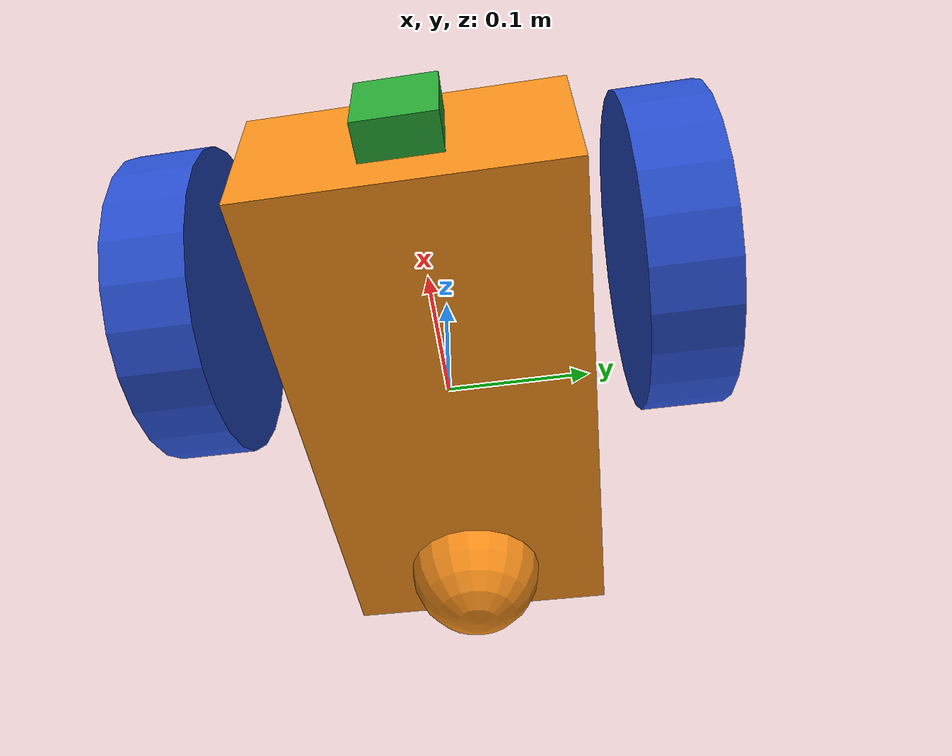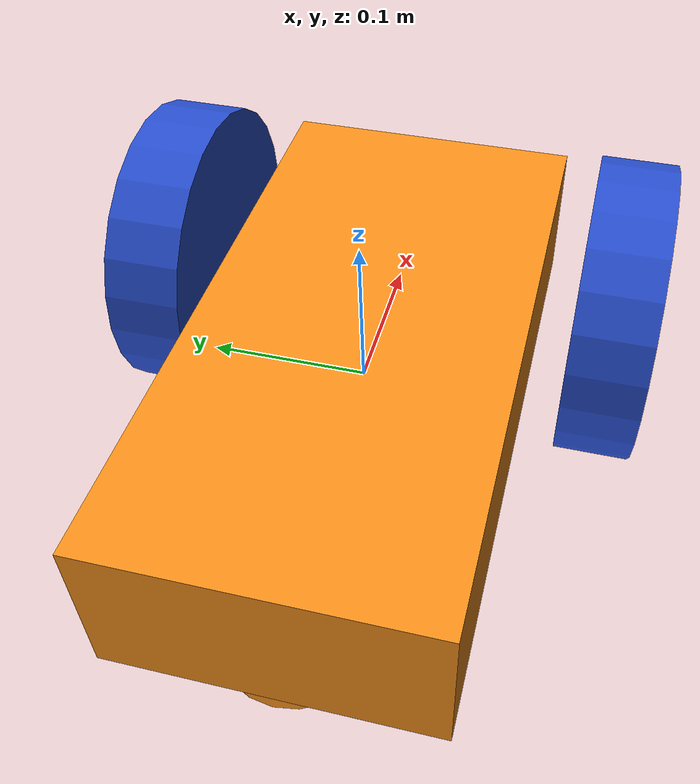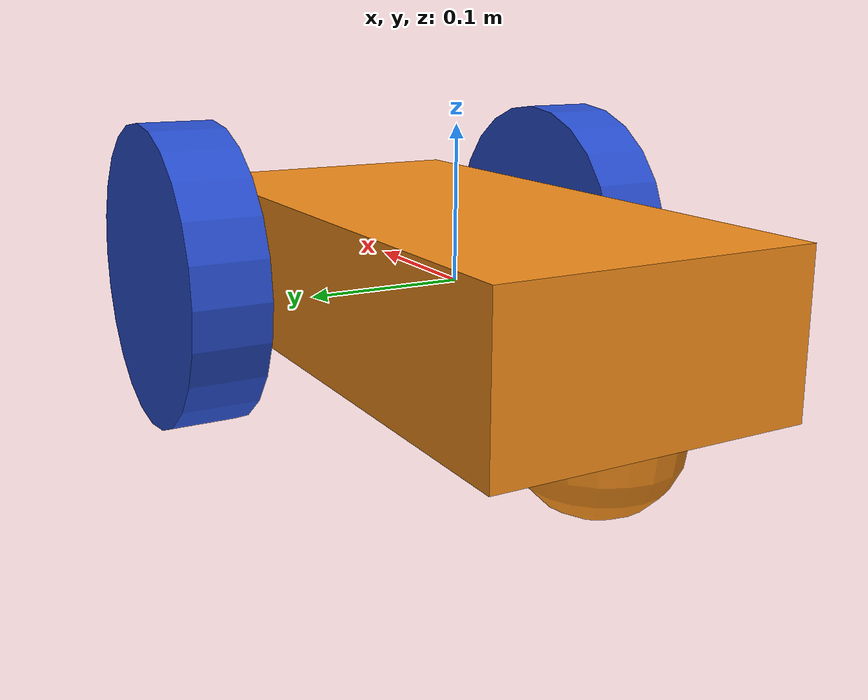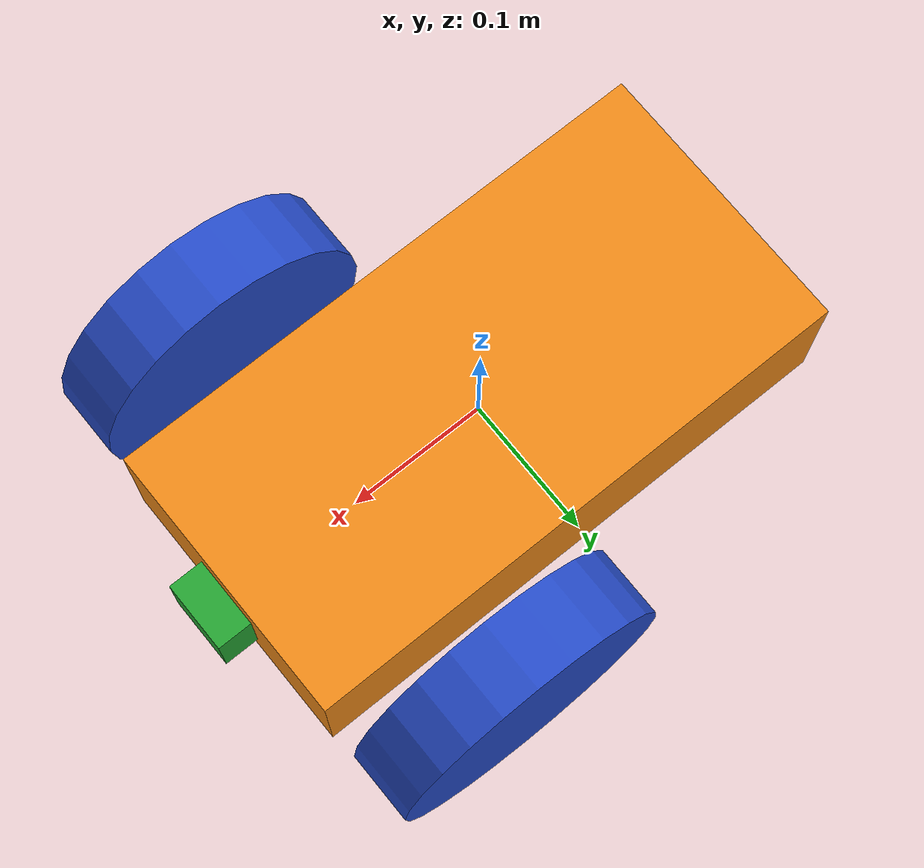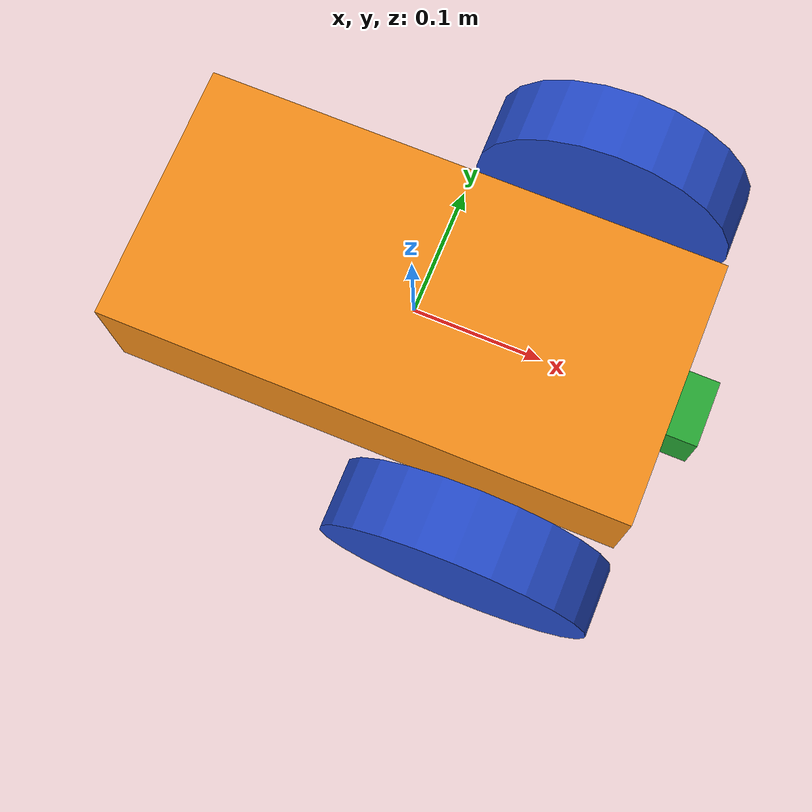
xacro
<?xml version='1.0'?>

<robot name="myrobot" xmlns:xacro="http://www.ros.org/wiki/xacro">

  <xacro:property name="cameraSize" value="0.05"/>
  <xacro:property name="cameraMass" value="0.1"/>

  <xacro:include filename="$(find mybot_description)/urdf/mybot.gazebo" />
  <xacro:include filename="$(find mybot_description)/urdf/materials.xacro" />
  <xacro:include filename="$(find mybot_description)/urdf/macros.xacro" />

  <link name='chassis'>
    <pose>0 0 0.1 0 0 0</pose>

    <inertial>
      <mass value="10.0"/>
      <origin xyz="0.0 0 0.1" rpy=" 0 0 0"/>
      <inertia
          ixx="0.5" ixy="0" ixz="0"
          iyy="1.0" iyz="0"
          izz="0.1"
      />
    </inertial>

    <collision name='collision'>
      <geometry>
        <box size=".4 .2 .1"/>
      </geometry>
    </collision>

    <visual name='chassis_visual'>
      <origin xyz="0 0 0" rpy=" 0 0 0"/>
      <geometry>
        <box size=".4 .2 .1"/>
      </geometry>
    </visual>

    <collision name='caster_collision'>
      <origin xyz="-0.15 0 -0.05" rpy=" 0 0 0"/>
      <geometry>
        <sphere radius="0.05"/>
      </geometry>
      <surface>
        <friction>
          <ode>
            <mu>0</mu>
            <mu2>0</mu2>
            <slip1>1.0</slip1>
            <slip2>1.0</slip2>
          </ode>
        </friction>
      </surface>
    </collision>

    <visual name='caster_visual'>
      <origin xyz="-0.15 0 -0.05" rpy=" 0 0 0"/>
      <geometry>
        <sphere radius="0.05"/>
      </geometry>
    </visual>
  </link>

  <link name="left_wheel">
    <!--origin xyz="0.1 0.13 0.1" rpy="0 1.5707 1.5707"/-->
    <collision name="collision">
      <origin xyz="0 0 0" rpy="0 1.5707 1.5707"/>
      <geometry>
        <cylinder radius="0.1" length="0.05"/>
      </geometry>
    </collision>
    <visual name="left_wheel_visual">
      <origin xyz="0 0 0" rpy="0 1.5707 1.5707"/>
      <geometry>
        <cylinder radius="0.1" length="0.05"/>
      </geometry>
    </visual>
    <inertial>
      <origin xyz="0 0 0" rpy="0 1.5707 1.5707"/>
      <mass value="5"/>
      <cylinder_inertia m="5" r="0.1" h="0.05"/>
      <inertia
        ixx="1.0" ixy="0.0" ixz="0.0"
        iyy="1.0" iyz="0.0"
        izz="1.0"/>
    </inertial>
  </link>

  <link name="right_wheel">
    <!--origin xyz="0.1 -0.13 0.1" rpy="0 1.5707 1.5707"/-->
    <collision name="collision">
      <origin xyz="0 0 0" rpy="0 1.5707 1.5707"/>
      <geometry>
        <cylinder radius="0.1" length="0.05"/>
      </geometry>
    </collision>
    <visual name="right_wheel_visual">
      <origin xyz="0 0 0" rpy="0 1.5707 1.5707"/>
      <geometry>
        <cylinder radius="0.1" length="0.05"/>
      </geometry>
    </visual>
    <inertial>
      <origin xyz="0 0 0" rpy="0 1.5707 1.5707"/>
      <mass value="5"/>
      <cylinder_inertia m="5" r="0.1" h="0.05"/>
      <inertia
        ixx="1.0" ixy="0.0" ixz="0.0"
        iyy="1.0" iyz="0.0"
        izz="1.0"/>
    </inertial>
  </link>

  <joint name="camera_joint" type="fixed">
    <axis xyz="0 1 0" />
    <origin xyz=".2 0 0" rpy="0 0 0"/>
    <parent link="chassis"/>
    <child link="camera"/>

  </joint>

  <joint type="continuous" name="left_wheel_hinge">
    <origin xyz="0.1 0.15 0" rpy="0 0 0"/>
    <!--origin xyz="0.1 0.13 0" rpy="0 1.5707 1.5707"/-->
    <child link="left_wheel"/>
    <parent link="chassis"/>
    <axis xyz="0 1 0" rpy="0 0 0"/>
    <limit effort="100" velocity="100"/>
    <joint_properties damping="0.0" friction="0.0"/>
  </joint>

  <joint type="continuous" name="right_wheel_hinge">
    <origin xyz="0.1 -0.15 0" rpy="0 0 0"/>
    <!--origin xyz="0.1 -0.13 0" rpy="0 1.5707 1.5707"/-->
    <child link="right_wheel"/>
    <parent link="chassis"/>
    <axis xyz="0 1 0" rpy="0 0 0"/>
    <limit effort="100" velocity="100"/>
    <joint_properties damping="0.0" friction="0.0"/>
  </joint>

  <link name="camera">
    <collision>
      <origin xyz="0 0 0" rpy="0 0 0"/>
      <geometry>
        <box size="${cameraSize} ${cameraSize} ${cameraSize}"/>
      </geometry>
    </collision>

    <visual>
      <origin xyz="0 0 0" rpy="0 0 0"/>
      <geometry>
        <box size="${cameraSize} ${cameraSize} ${cameraSize}"/>
      </geometry>
      <material name="green"/>
    </visual>

    <inertial>
      <mass value="${cameraMass}" />
      <origin xyz="0 0 0" rpy="0 0 0"/>
      <box_inertia m="${cameraMass}" x="${cameraSize}" y="${cameraSize}" z="${cameraSize}" />
      <inertia ixx="1e-6" ixy="0" ixz="0" iyy="1e-6" iyz="0" izz="1e-6" />
    </inertial>
  </link>

  <!-- generate an optical frame http://www.ros.org/reps/rep-0103.html#suffix-frames
      so that ros and opencv can operate on the camera frame correctly -->
  <joint name="camera_optical_joint" type="fixed">
    <origin xyz="0 0 0" rpy="${-pi/2} 0 ${-pi/2}"/>
    <parent link="camera"/>
    <child link="camera_link_optical"/>
  </joint>

  <link name="camera_link_optical">
  </link>

<joint name="camera_ar_track_joint" type="fixed"> -->
    <!-- these values have to be these values otherwise the gazebo camera image
        won't be aligned properly with the frame it is supposedly originating from -->
    <origin xyz=".1 0 0" rpy="0 0 0"/>
    <parent link="chassis"/>
    <child link="camera_ar_track"/>
  </joint>

  <link name="camera_ar_track">
  </link>

</robot>
